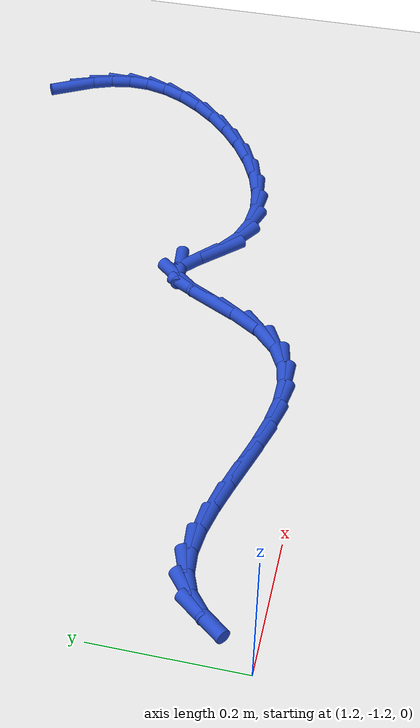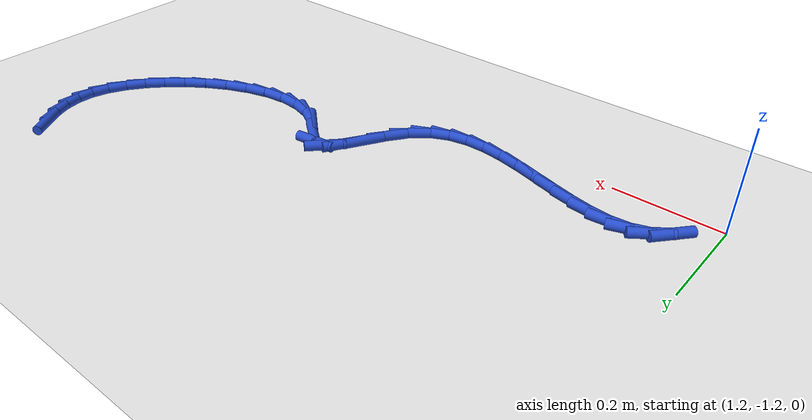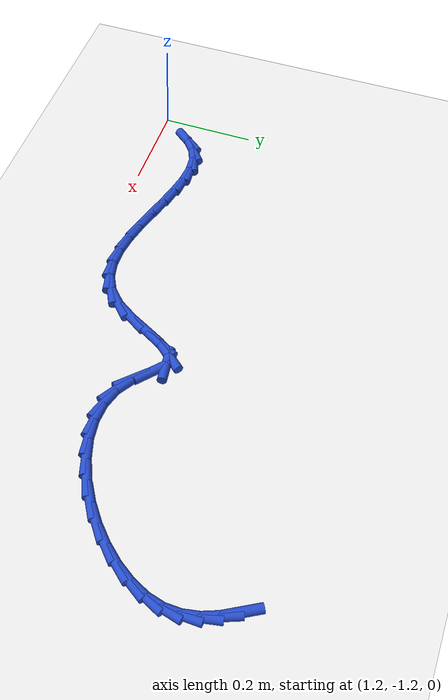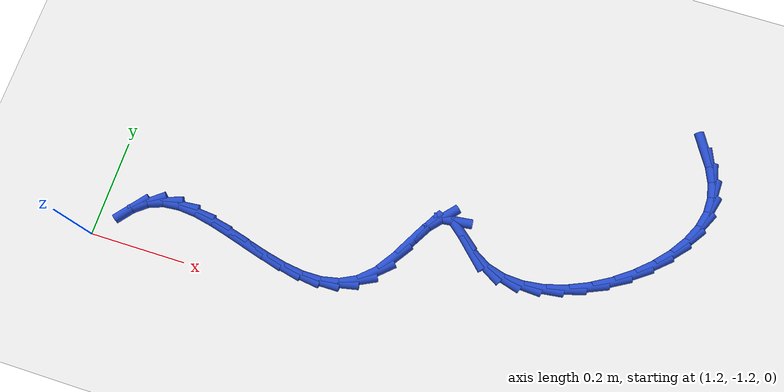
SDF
<sdf version="1.6">
 <world name="default">
  <model name="ground_plane">
   <static>1</static>
   <link name="link">
    <collision name="collision">
     <geometry><plane><normal>0 0 1</normal><size>100 100</size></plane></geometry>
     <surface><friction><ode><mu>100</mu><mu2>50</mu2></ode></friction></surface>
    </collision>
    <visual name="visual">
     <cast_shadows>0</cast_shadows>
     <geometry><plane><normal>0 0 1</normal><size>100 100</size></plane></geometry>
     <material>
      <script><uri>file://media/materials/scripts/gazebo.material</uri><name>Gazebo/WhiteGlow</name></script>
     </material>
    </visual>
   </link>
  </model>
  <model name="line">
   <link name="link_135">
    <pose>2.3438690180289976 -0.6561186166563657 0.01 0 1.57 -1.0346778763831368</pose>
    <collision name="collision">
     <geometry><cylinder><radius>0.01</radius><length>0.08</length></cylinder></geometry>
    </collision>
    <visual name="visual">
     <material>
      <script><name>Gazebo/Blue</name><uri>file://media/materials/scripts/gazebo.material</uri></script>
     </material>
     <geometry><cylinder><radius>0.01</radius><length>0.08</length></cylinder></geometry>
    </visual>
   </link>
   <link name="link_136">
    <pose>2.362272727194377 -0.6870926572145779 0.01 0 1.57 -1.1834638772914798</pose>
    <collision name="collision">
     <geometry><cylinder><radius>0.01</radius><length>0.08</length></cylinder></geometry>
    </collision>
    <visual name="visual">
     <material>
      <script><name>Gazebo/Blue</name><uri>file://media/materials/scripts/gazebo.material</uri></script>
     </material>
     <geometry><cylinder><radius>0.01</radius><length>0.08</length></cylinder></geometry>
    </visual>
   </link>
   <link name="link_137">
    <pose>2.375194437888167 -0.7187681712706957 0.01 0 1.57 -1.3744402429359204</pose>
    <collision name="collision">
     <geometry><cylinder><radius>0.01</radius><length>0.08</length></cylinder></geometry>
    </collision>
    <visual name="visual">
     <material>
      <script><name>Gazebo/Blue</name><uri>file://media/materials/scripts/gazebo.material</uri></script>
     </material>
     <geometry><cylinder><radius>0.01</radius><length>0.08</length></cylinder></geometry>
    </visual>
   </link>
   <link name="link_138">
    <pose>2.3816614181549944 -0.7512787648461915 0.01 0 1.57 1.5421153407479404</pose>
    <collision name="collision">
     <geometry><cylinder><radius>0.01</radius><length>0.08</length></cylinder></geometry>
    </collision>
    <visual name="visual">
     <material>
      <script><name>Gazebo/Blue</name><uri>file://media/materials/scripts/gazebo.material</uri></script>
     </material>
     <geometry><cylinder><radius>0.01</radius><length>0.08</length></cylinder></geometry>
    </visual>
   </link>
   <link name="link_139">
    <pose>2.380700936039489 -0.7847580439625377 0.01 0 1.57 1.3100343854938217</pose>
    <collision name="collision">
     <geometry><cylinder><radius>0.01</radius><length>0.08</length></cylinder></geometry>
    </collision>
    <visual name="visual">
     <material>
      <script><name>Gazebo/Blue</name><uri>file://media/materials/scripts/gazebo.material</uri></script>
     </material>
     <geometry><cylinder><radius>0.01</radius><length>0.08</length></cylinder></geometry>
    </visual>
   </link>
   <link name="link_140">
    <pose>2.37149469344767 -0.8192593423294325 0.01 0 1.57 1.1173130234961435</pose>
    <collision name="collision">
     <geometry><cylinder><radius>0.01</radius><length>0.08</length></cylinder></geometry>
    </collision>
    <visual name="visual">
     <material>
      <script><name>Gazebo/Blue</name><uri>file://media/materials/scripts/gazebo.material</uri></script>
     </material>
     <geometry><cylinder><radius>0.01</radius><length>0.08</length></cylinder></geometry>
    </visual>
   </link>
   <link name="link_141">
    <pose>2.3544722118295858 -0.8541873965252577 0.01 0 1.57 0.9660693975481395</pose>
    <collision name="collision">
     <geometry><cylinder><radius>0.01</radius><length>0.08</length></cylinder></geometry>
    </collision>
    <visual name="visual">
     <material>
      <script><name>Gazebo/Blue</name><uri>file://media/materials/scripts/gazebo.material</uri></script>
     </material>
     <geometry><cylinder><radius>0.01</radius><length>0.08</length></cylinder></geometry>
    </visual>
   </link>
   <link name="link_142">
    <pose>2.3306668435492233 -0.8886330812399067 0.01 0 1.57 0.8412666153453643</pose>
    <collision name="collision">
     <geometry><cylinder><radius>0.01</radius><length>0.08</length></cylinder></geometry>
    </collision>
    <visual name="visual">
     <material>
      <script><name>Gazebo/Blue</name><uri>file://media/materials/scripts/gazebo.material</uri></script>
     </material>
     <geometry><cylinder><radius>0.01</radius><length>0.08</length></cylinder></geometry>
    </visual>
   </link>
   <link name="link_143">
    <pose>2.3011158856240232 -0.921685220793951 0.01 0 1.57 0.7314279864189679</pose>
    <collision name="collision">
     <geometry><cylinder><radius>0.01</radius><length>0.08</length></cylinder></geometry>
    </collision>
    <visual name="visual">
     <material>
      <script><name>Gazebo/Blue</name><uri>file://media/materials/scripts/gazebo.material</uri></script>
     </material>
     <geometry><cylinder><radius>0.01</radius><length>0.08</length></cylinder></geometry>
    </visual>
   </link>
   <link name="link_144">
    <pose>2.2668566350714245 -0.9524326395079612 0.01 0 1.57 0.6278625780230507</pose>
    <collision name="collision">
     <geometry><cylinder><radius>0.01</radius><length>0.08</length></cylinder></geometry>
    </collision>
    <visual name="visual">
     <material>
      <script><name>Gazebo/Blue</name><uri>file://media/materials/scripts/gazebo.material</uri></script>
     </material>
     <geometry><cylinder><radius>0.01</radius><length>0.08</length></cylinder></geometry>
    </visual>
   </link>
   <link name="link_145">
    <pose>2.2289263889088695 -0.9799641617025069 0.01 0 1.57 0.5233185351091988</pose>
    <collision name="collision">
     <geometry><cylinder><radius>0.01</radius><length>0.08</length></cylinder></geometry>
    </collision>
    <visual name="visual">
     <material>
      <script><name>Gazebo/Blue</name><uri>file://media/materials/scripts/gazebo.material</uri></script>
     </material>
     <geometry><cylinder><radius>0.01</radius><length>0.08</length></cylinder></geometry>
    </visual>
   </link>
   <link name="link_146">
    <pose>2.188362444153798 -1.0033686116981597 0.01 0 1.57 0.41083760652213175</pose>
    <collision name="collision">
     <geometry><cylinder><radius>0.01</radius><length>0.08</length></cylinder></geometry>
    </collision>
    <visual name="visual">
     <material>
      <script><name>Gazebo/Blue</name><uri>file://media/materials/scripts/gazebo.material</uri></script>
     </material>
     <geometry><cylinder><radius>0.01</radius><length>0.08</length></cylinder></geometry>
    </visual>
   </link>
   <link name="link_147">
    <pose>2.14620209782365 -1.0217348138154905 0.01 0 1.57 0.2828648832573015</pose>
    <collision name="collision">
     <geometry><cylinder><radius>0.01</radius><length>0.08</length></cylinder></geometry>
    </collision>
    <visual name="visual">
     <material>
      <script><name>Gazebo/Blue</name><uri>file://media/materials/scripts/gazebo.material</uri></script>
     </material>
     <geometry><cylinder><radius>0.01</radius><length>0.08</length></cylinder></geometry>
    </visual>
   </link>
   <link name="link_148">
    <pose>2.103482646935864 -1.0341515923750697 0.01 0 1.57 0.13078362379389902</pose>
    <collision name="collision">
     <geometry><cylinder><radius>0.01</radius><length>0.08</length></cylinder></geometry>
    </collision>
    <visual name="visual">
     <material>
      <script><name>Gazebo/Blue</name><uri>file://media/materials/scripts/gazebo.material</uri></script>
     </material>
     <geometry><cylinder><radius>0.01</radius><length>0.08</length></cylinder></geometry>
    </visual>
   </link>
   <link name="link_149">
    <pose>2.0612413885078835 -1.039707771697468 0.01 0 1.57 -0.054349217178253854</pose>
    <collision name="collision">
     <geometry><cylinder><radius>0.01</radius><length>0.08</length></cylinder></geometry>
    </collision>
    <visual name="visual">
     <material>
      <script><name>Gazebo/Blue</name><uri>file://media/materials/scripts/gazebo.material</uri></script>
     </material>
     <geometry><cylinder><radius>0.01</radius><length>0.08</length></cylinder></geometry>
    </visual>
   </link>
   <link name="link_150">
    <pose>2.020515619557148 -1.0374921761032563 0.01 0 1.57 -0.27810540284074764</pose>
    <collision name="collision">
     <geometry><cylinder><radius>0.01</radius><length>0.08</length></cylinder></geometry>
    </collision>
    <visual name="visual">
     <material>
      <script><name>Gazebo/Blue</name><uri>file://media/materials/scripts/gazebo.material</uri></script>
     </material>
     <geometry><cylinder><radius>0.01</radius><length>0.08</length></cylinder></geometry>
    </visual>
   </link>
   <link name="link_151">
    <pose>1.9823426371010968 -1.0265936299130054 0.01 0 1.57 -0.5349358710875071</pose>
    <collision name="collision">
     <geometry><cylinder><radius>0.01</radius><length>0.08</length></cylinder></geometry>
    </collision>
    <visual name="visual">
     <material>
      <script><name>Gazebo/Blue</name><uri>file://media/materials/scripts/gazebo.material</uri></script>
     </material>
     <geometry><cylinder><radius>0.01</radius><length>0.08</length></cylinder></geometry>
    </visual>
   </link>
   <link name="link_152">
    <pose>1.9477597381571705 -1.006100957447286 0.01 0 1.57 -0.7672233390065469</pose>
    <collision name="collision">
     <geometry><cylinder><radius>0.01</radius><length>0.08</length></cylinder></geometry>
    </collision>
    <visual name="visual">
     <material>
      <script><name>Gazebo/Blue</name><uri>file://media/materials/scripts/gazebo.material</uri></script>
     </material>
     <geometry><cylinder><radius>0.01</radius><length>0.08</length></cylinder></geometry>
    </visual>
   </link>
   <link name="link_153">
    <pose>1.917631015006739 -0.977047969944918 0.01 0 1.57 -0.6977001414481018</pose>
    <collision name="collision">
     <geometry><cylinder><radius>0.01</radius><length>0.08</length></cylinder></geometry>
    </collision>
    <visual name="visual">
     <material>
      <script><name>Gazebo/Blue</name><uri>file://media/materials/scripts/gazebo.material</uri></script>
     </material>
     <geometry><cylinder><radius>0.01</radius><length>0.08</length></cylinder></geometry>
    </visual>
   </link>
   <link name="link_154">
    <pose>1.8915130042104797 -0.9551515573488374 0.01 0 1.57 0.12217460244313565</pose>
    <collision name="collision">
     <geometry><cylinder><radius>0.01</radius><length>0.08</length></cylinder></geometry>
    </collision>
    <visual name="visual">
     <material>
      <script><name>Gazebo/Blue</name><uri>file://media/materials/scripts/gazebo.material</uri></script>
     </material>
     <geometry><cylinder><radius>0.01</radius><length>0.08</length></cylinder></geometry>
    </visual>
   </link>
   <link name="link_155">
    <pose>1.8682995002483849 -0.9580018538764173 0.01 0 1.57 0.8472843544778563</pose>
    <collision name="collision">
     <geometry><cylinder><radius>0.01</radius><length>0.08</length></cylinder></geometry>
    </collision>
    <visual name="visual">
     <material>
      <script><name>Gazebo/Blue</name><uri>file://media/materials/scripts/gazebo.material</uri></script>
     </material>
     <geometry><cylinder><radius>0.01</radius><length>0.08</length></cylinder></geometry>
    </visual>
   </link>
   <link name="link_156">
    <pose>1.8466000047450848 -0.9825682287644872 0.01 0 1.57 1.0498537837206139</pose>
    <collision name="collision">
     <geometry><cylinder><radius>0.01</radius><length>0.08</length></cylinder></geometry>
    </collision>
    <visual name="visual">
     <material>
      <script><name>Gazebo/Blue</name><uri>file://media/materials/scripts/gazebo.material</uri></script>
     </material>
     <geometry><cylinder><radius>0.01</radius><length>0.08</length></cylinder></geometry>
    </visual>
   </link>
   <link name="link_157">
    <pose>1.8249488625696635 -1.0203002127245746 0.01 0 1.57 1.0719949437648264</pose>
    <collision name="collision">
     <geometry><cylinder><radius>0.01</radius><length>0.08</length></cylinder></geometry>
    </collision>
    <visual name="visual">
     <material>
      <script><name>Gazebo/Blue</name><uri>file://media/materials/scripts/gazebo.material</uri></script>
     </material>
     <geometry><cylinder><radius>0.01</radius><length>0.08</length></cylinder></geometry>
    </visual>
   </link>
   <link name="link_158">
    <pose>1.8018804178172665 -1.0626472796264803 0.01 0 1.57 0.9766254599617508</pose>
    <collision name="collision">
     <geometry><cylinder><radius>0.01</radius><length>0.08</length></cylinder></geometry>
    </collision>
    <visual name="visual">
     <material>
      <script><name>Gazebo/Blue</name><uri>file://media/materials/scripts/gazebo.material</uri></script>
     </material>
     <geometry><cylinder><radius>0.01</radius><length>0.08</length></cylinder></geometry>
    </visual>
   </link>
   <link name="link_159">
    <pose>1.7759290145830364 -1.1010589033400078 0.01 0 1.57 0.7445085486082607</pose>
    <collision name="collision">
     <geometry><cylinder><radius>0.01</radius><length>0.08</length></cylinder></geometry>
    </collision>
    <visual name="visual">
     <material>
      <script><name>Gazebo/Blue</name><uri>file://media/materials/scripts/gazebo.material</uri></script>
     </material>
     <geometry><cylinder><radius>0.01</radius><length>0.08</length></cylinder></geometry>
    </visual>
   </link>
   <link name="link_160">
    <pose>1.7459763108992399 -1.1286570620480512 0.01 0 1.57 0.461974167639619</pose>
    <collision name="collision">
     <geometry><cylinder><radius>0.01</radius><length>0.08</length></cylinder></geometry>
    </collision>
    <visual name="visual">
     <material>
      <script><name>Gazebo/Blue</name><uri>file://media/materials/scripts/gazebo.material</uri></script>
     </material>
     <geometry><cylinder><radius>0.01</radius><length>0.08</length></cylinder></geometry>
    </visual>
   </link>
   <link name="link_161">
    <pose>1.7123260535494556 -1.145411859839017 0.01 0 1.57 0.20519506064597728</pose>
    <collision name="collision">
     <geometry><cylinder><radius>0.01</radius><length>0.08</length></cylinder></geometry>
    </collision>
    <visual name="visual">
     <material>
      <script><name>Gazebo/Blue</name><uri>file://media/materials/scripts/gazebo.material</uri></script>
     </material>
     <geometry><cylinder><radius>0.01</radius><length>0.08</length></cylinder></geometry>
    </visual>
   </link>
   <link name="link_162">
    <pose>1.675645912817706 -1.1530458891384392 0.01 0 1.57 0.006040905591992622</pose>
    <collision name="collision">
     <geometry><cylinder><radius>0.01</radius><length>0.08</length></cylinder></geometry>
    </collision>
    <visual name="visual">
     <material>
      <script><name>Gazebo/Blue</name><uri>file://media/materials/scripts/gazebo.material</uri></script>
     </material>
     <geometry><cylinder><radius>0.01</radius><length>0.08</length></cylinder></geometry>
    </visual>
   </link>
   <link name="link_163">
    <pose>1.636603559155833 -1.1532817431799778 0.01 0 1.57 -0.1327478998770763</pose>
    <collision name="collision">
     <geometry><cylinder><radius>0.01</radius><length>0.08</length></cylinder></geometry>
    </collision>
    <visual name="visual">
     <material>
      <script><name>Gazebo/Blue</name><uri>file://media/materials/scripts/gazebo.material</uri></script>
     </material>
     <geometry><cylinder><radius>0.01</radius><length>0.08</length></cylinder></geometry>
    </visual>
   </link>
   <link name="link_164">
    <pose>1.5958666630156768 -1.1478420151972946 0.01 0 1.57 -0.22122029160726214</pose>
    <collision name="collision">
     <geometry><cylinder><radius>0.01</radius><length>0.08</length></cylinder></geometry>
    </collision>
    <visual name="visual">
     <material>
      <script><name>Gazebo/Blue</name><uri>file://media/materials/scripts/gazebo.material</uri></script>
     </material>
     <geometry><cylinder><radius>0.01</radius><length>0.08</length></cylinder></geometry>
    </visual>
   </link>
   <link name="link_165">
    <pose>1.5541028948490776 -1.138449298424051 0.01 0 1.57 -0.26923329444955385</pose>
    <collision name="collision">
     <geometry><cylinder><radius>0.01</radius><length>0.08</length></cylinder></geometry>
    </collision>
    <visual name="visual">
     <material>
      <script><name>Gazebo/Blue</name><uri>file://media/materials/scripts/gazebo.material</uri></script>
     </material>
     <geometry><cylinder><radius>0.01</radius><length>0.08</length></cylinder></geometry>
    </visual>
   </link>
   <link name="link_166">
    <pose>1.511979925107875 -1.1268261860939077 0.01 0 1.57 -0.2823613078544301</pose>
    <collision name="collision">
     <geometry><cylinder><radius>0.01</radius><length>0.08</length></cylinder></geometry>
    </collision>
    <visual name="visual">
     <material>
      <script><name>Gazebo/Blue</name><uri>file://media/materials/scripts/gazebo.material</uri></script>
     </material>
     <geometry><cylinder><radius>0.01</radius><length>0.08</length></cylinder></geometry>
    </visual>
   </link>
   <link name="link_167">
    <pose>1.4701654242439115 -1.1146952714405267 0.01 0 1.57 -0.2611942636356834</pose>
    <collision name="collision">
     <geometry><cylinder><radius>0.01</radius><length>0.08</length></cylinder></geometry>
    </collision>
    <visual name="visual">
     <material>
      <script><name>Gazebo/Blue</name><uri>file://media/materials/scripts/gazebo.material</uri></script>
     </material>
     <geometry><cylinder><radius>0.01</radius><length>0.08</length></cylinder></geometry>
    </visual>
   </link>
   <link name="link_168">
    <pose>1.4293270627090267 -1.1037791476975691 0.01 0 1.57 -0.20082354889339935</pose>
    <collision name="collision">
     <geometry><cylinder><radius>0.01</radius><length>0.08</length></cylinder></geometry>
    </collision>
    <visual name="visual">
     <material>
      <script><name>Gazebo/Blue</name><uri>file://media/materials/scripts/gazebo.material</uri></script>
     </material>
     <geometry><cylinder><radius>0.01</radius><length>0.08</length></cylinder></geometry>
    </visual>
   </link>
   <link name="link_169">
    <pose>1.3901325109550606 -1.0958004080986958 0.01 0 1.57 -0.08973896542257294</pose>
    <collision name="collision">
     <geometry><cylinder><radius>0.01</radius><length>0.08</length></cylinder></geometry>
    </collision>
    <visual name="visual">
     <material>
      <script><name>Gazebo/Blue</name><uri>file://media/materials/scripts/gazebo.material</uri></script>
     </material>
     <geometry><cylinder><radius>0.01</radius><length>0.08</length></cylinder></geometry>
    </visual>
   </link>
   <link name="link_170">
    <pose>1.3532494394338535 -1.0924816458775681 0.01 0 1.57 0.090122587209999</pose>
    <collision name="collision">
     <geometry><cylinder><radius>0.01</radius><length>0.08</length></cylinder></geometry>
    </collision>
    <visual name="visual">
     <material>
      <script><name>Gazebo/Blue</name><uri>file://media/materials/scripts/gazebo.material</uri></script>
     </material>
     <geometry><cylinder><radius>0.01</radius><length>0.08</length></cylinder></geometry>
    </visual>
   </link>
   <link name="link_171">
    <pose>1.319345518597247 -1.0955454542678478 0.01 0 1.57 0.3536193800681661</pose>
    <collision name="collision">
     <geometry><cylinder><radius>0.01</radius><length>0.08</length></cylinder></geometry>
    </collision>
    <visual name="visual">
     <material>
      <script><name>Gazebo/Blue</name><uri>file://media/materials/scripts/gazebo.material</uri></script>
     </material>
     <geometry><cylinder><radius>0.01</radius><length>0.08</length></cylinder></geometry>
    </visual>
   </link>
   <link name="link_172">
    <pose>1.2890884188970815 -1.1067144265031958 0.01 0 1.57 0.6647899089413295</pose>
    <collision name="collision">
     <geometry><cylinder><radius>0.01</radius><length>0.08</length></cylinder></geometry>
    </collision>
    <visual name="visual">
     <material>
      <script><name>Gazebo/Blue</name><uri>file://media/materials/scripts/gazebo.material</uri></script>
     </material>
     <geometry><cylinder><radius>0.01</radius><length>0.08</length></cylinder></geometry>
    </visual>
   </link>
   <link name="link_173">
    <pose>1.262939096681697 -1.1272104919013894 0.01 0 1.57 0.8914017697582729</pose>
    <collision name="collision">
     <geometry><cylinder><radius>0.01</radius><length>0.08</length></cylinder></geometry>
    </collision>
    <visual name="visual">
     <material>
      <script><name>Gazebo/Blue</name><uri>file://media/materials/scripts/gazebo.material</uri></script>
     </material>
     <geometry><cylinder><radius>0.01</radius><length>0.08</length></cylinder></geometry>
    </visual>
   </link>
  </model>
 </world>
</sdf>
